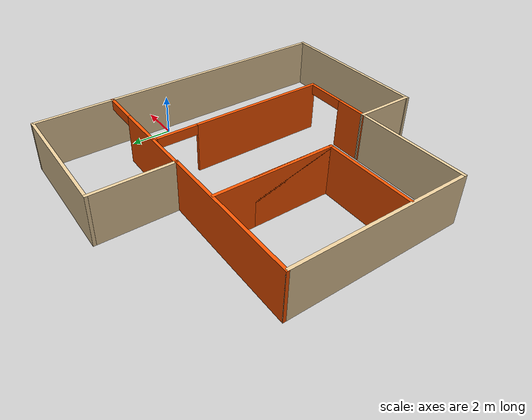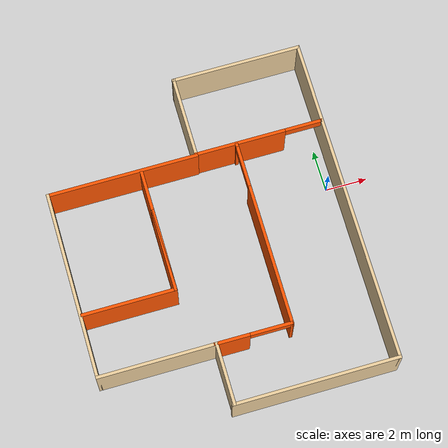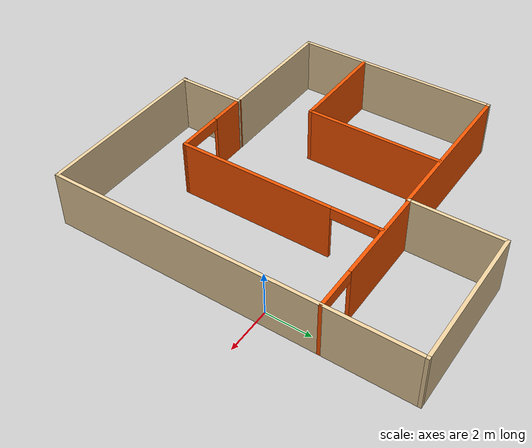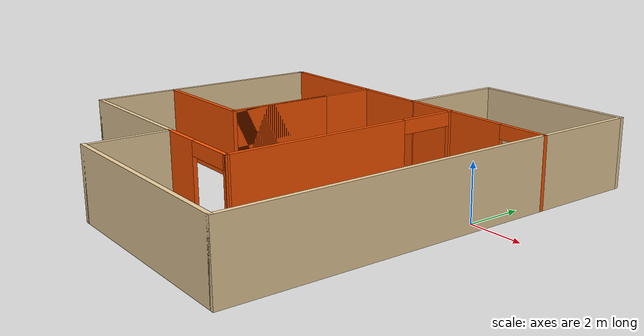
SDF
<?xml version='1.0'?>
<sdf version='1.6'>
  <model name='projectbuilding'>
    <pose frame=''>-6.133 -1.362 0 0 -0 0</pose>
    <link name='Wall_13'>
      <collision name='Wall_13_Collision'>
        <geometry>
          <box>
            <size>9 0.15 2.5</size>
          </box>
        </geometry>
        <pose frame=''>0 0 1.25 0 -0 0</pose>
      </collision>
      <visual name='Wall_13_Visual'>
        <pose frame=''>0 0 1.25 0 -0 0</pose>
        <geometry>
          <box>
            <size>9 0.15 2.5</size>
          </box>
        </geometry>
        <material>
          <script>
            <uri>file://media/materials/scripts/gazebo.material</uri>
            <name>Gazebo/Grey</name>
          </script>
          <ambient>0.921569 0.807843 0.615686 1</ambient>
        </material>
        <meta>
          <layer>0</layer>
        </meta>
      </visual>
      <pose frame=''>-6.6 -0.525 0 0 0 -1.5708</pose>
    </link>
    <link name='Wall_15'>
      <collision name='Wall_15_Collision'>
        <geometry>
          <box>
            <size>5.62 0.15 2.5</size>
          </box>
        </geometry>
        <pose frame=''>0 0 1.25 0 -0 0</pose>
      </collision>
      <visual name='Wall_15_Visual'>
        <pose frame=''>0 0 1.25 0 -0 0</pose>
        <geometry>
          <box>
            <size>5.62 0.15 2.5</size>
          </box>
        </geometry>
        <material>
          <script>
            <uri>file://media/materials/scripts/gazebo.material</uri>
            <name>Gazebo/Grey</name>
          </script>
          <ambient>0.921569 0.807843 0.615686 1</ambient>
        </material>
        <meta>
          <layer>0</layer>
        </meta>
      </visual>
      <pose frame=''>-3.865 -4.95 0 0 -0 0</pose>
    </link>
    <link name='Wall_17'>
      <collision name='Wall_17_Collision'>
        <geometry>
          <box>
            <size>3 0.15 2.5</size>
          </box>
        </geometry>
        <pose frame=''>0 0 1.25 0 -0 0</pose>
      </collision>
      <visual name='Wall_17_Visual'>
        <pose frame=''>0 0 1.25 0 -0 0</pose>
        <geometry>
          <box>
            <size>3 0.15 2.5</size>
          </box>
        </geometry>
        <material>
          <script>
            <uri>file://media/materials/scripts/gazebo.material</uri>
            <name>Gazebo/Grey</name>
          </script>
          <ambient>0.921569 0.807843 0.615686 1</ambient>
        </material>
        <meta>
          <layer>0</layer>
        </meta>
      </visual>
      <pose frame=''>-1.084 -6.375 0 0 0 -1.5708</pose>
    </link>
    <link name='Wall_19'>
      <collision name='Wall_19_Collision'>
        <geometry>
          <box>
            <size>7.88 0.15 2.5</size>
          </box>
        </geometry>
        <pose frame=''>0 0 1.25 0 -0 0</pose>
      </collision>
      <visual name='Wall_19_Visual'>
        <pose frame=''>0 0 1.25 0 -0 0</pose>
        <geometry>
          <box>
            <size>7.88 0.15 2.5</size>
          </box>
        </geometry>
        <material>
          <script>
            <uri>file://media/materials/scripts/gazebo.material</uri>
            <name>Gazebo/Grey</name>
          </script>
          <ambient>0.921569 0.807843 0.615686 1</ambient>
        </material>
        <meta>
          <layer>0</layer>
        </meta>
      </visual>
      <pose frame=''>2.735 -7.8 0 0 -0 0</pose>
    </link>
    <link name='Wall_2'>
      <collision name='Wall_2_Collision'>
        <geometry>
          <box>
            <size>7.25 0.15 2.5</size>
          </box>
        </geometry>
        <pose frame=''>0 0 1.25 0 -0 0</pose>
      </collision>
      <visual name='Wall_2_Visual'>
        <pose frame=''>0 0 1.25 0 -0 0</pose>
        <geometry>
          <box>
            <size>7.25 0.15 2.5</size>
          </box>
        </geometry>
        <material>
          <script>
            <uri>file://media/materials/scripts/gazebo.material</uri>
            <name>Gazebo/Grey</name>
          </script>
          <ambient>1 0.333333 0 1</ambient>
        </material>
        <meta>
          <layer>0</layer>
        </meta>
      </visual>
      <pose frame=''>-3.05 3.9 0 0 -0 0</pose>
    </link>
    <link name='Wall_21'>
      <collision name='Wall_21_Collision'>
        <geometry>
          <box>
            <size>15.75 0.15 2.5</size>
          </box>
        </geometry>
        <pose frame=''>0 0 1.25 0 -0 0</pose>
      </collision>
      <visual name='Wall_21_Visual'>
        <pose frame=''>0 0 1.25 0 -0 0</pose>
        <geometry>
          <box>
            <size>15.75 0.15 2.5</size>
          </box>
        </geometry>
        <material>
          <script>
            <uri>file://media/materials/scripts/gazebo.material</uri>
            <name>Gazebo/Grey</name>
          </script>
          <ambient>0.921569 0.807843 0.615686 1</ambient>
        </material>
        <meta>
          <layer>0</layer>
        </meta>
      </visual>
      <pose frame=''>6.6 0 0 0 -0 1.5708</pose>
    </link>
    <link name='Wall_22'>
      <collision name='Wall_22_Collision'>
        <geometry>
          <box>
            <size>6.25 0.15 2.5</size>
          </box>
        </geometry>
        <pose frame=''>0 0 1.25 0 -0 0</pose>
      </collision>
      <visual name='Wall_22_Visual'>
        <pose frame=''>0 0 1.25 0 -0 0</pose>
        <geometry>
          <box>
            <size>6.25 0.15 2.5</size>
          </box>
        </geometry>
        <material>
          <script>
            <uri>file://media/materials/scripts/gazebo.material</uri>
            <name>Gazebo/Grey</name>
          </script>
          <ambient>0.921569 0.807843 0.615686 1</ambient>
        </material>
        <meta>
          <layer>0</layer>
        </meta>
      </visual>
      <pose frame=''>3.55 7.8 0 0 -0 3.14159</pose>
    </link>
    <link name='Wall_23'>
      <collision name='Wall_23_Collision'>
        <geometry>
          <box>
            <size>4 0.15 2.5</size>
          </box>
        </geometry>
        <pose frame=''>0 0 1.25 0 -0 0</pose>
      </collision>
      <visual name='Wall_23_Visual'>
        <pose frame=''>0 0 1.25 0 -0 0</pose>
        <geometry>
          <box>
            <size>4 0.15 2.5</size>
          </box>
        </geometry>
        <material>
          <script>
            <uri>file://media/materials/scripts/gazebo.material</uri>
            <name>Gazebo/Grey</name>
          </script>
          <ambient>0.921569 0.807843 0.615686 1</ambient>
        </material>
        <meta>
          <layer>0</layer>
        </meta>
      </visual>
      <pose frame=''>0.5 5.875 0 0 0 -1.5708</pose>
    </link>
    <link name='Wall_25'>
      <pose frame=''>-2.16039 0.913927 0 0 0 -1.5708</pose>
      <visual name='Wall_25_Visual_0'>
        <pose frame=''>0 0 1.25 0 -0 0</pose>
        <geometry>
          <box>
            <size>6 0.15 2.5</size>
          </box>
        </geometry>
        <material>
          <script>
            <uri>file://media/materials/scripts/gazebo.material</uri>
            <name>Gazebo/Grey</name>
          </script>
          <ambient>1 0.333333 0 1</ambient>
        </material>
        <meta>
          <layer>0</layer>
        </meta>
      </visual>
      <collision name='Wall_25_Collision_0'>
        <geometry>
          <box>
            <size>6 0.15 2.5</size>
          </box>
        </geometry>
        <pose frame=''>0 0 1.25 0 -0 0</pose>
      </collision>
      <visual name='Wall_25_Visual_1'>
        <pose frame=''>0.9975 0 1.25 0 -0 0</pose>
        <geometry>
          <box>
            <size>4.005 0.15 2.5</size>
          </box>
        </geometry>
        <material>
          <script>
            <uri>file://media/materials/scripts/gazebo.material</uri>
            <name>Gazebo/Grey</name>
          </script>
          <ambient>1 0.333333 0 1</ambient>
        </material>
        <meta>
          <layer>0</layer>
        </meta>
      </visual>
      <collision name='Wall_25_Collision_1'>
        <geometry>
          <box>
            <size>4.005 0.15 2.5</size>
          </box>
        </geometry>
        <pose frame=''>0.9975 0 1.25 0 -0 0</pose>
      </collision>
    </link>
    <link name='Wall_26'>
      <collision name='Wall_26_Collision'>
        <geometry>
          <box>
            <size>4.5 0.15 2.5</size>
          </box>
        </geometry>
        <pose frame=''>0 0 1.25 0 -0 0</pose>
      </collision>
      <visual name='Wall_26_Visual'>
        <pose frame=''>0 0 1.25 0 -0 0</pose>
        <geometry>
          <box>
            <size>4.5 0.15 2.5</size>
          </box>
        </geometry>
        <material>
          <script>
            <uri>file://media/materials/scripts/gazebo.material</uri>
            <name>Gazebo/Grey</name>
          </script>
          <ambient>1 0.333333 0 1</ambient>
        </material>
        <meta>
          <layer>0</layer>
        </meta>
      </visual>
      <pose frame=''>-4.33539 -2.01107 0 0 -0 3.14159</pose>
    </link>
    <link name='Wall_28'>
      <pose frame=''>3.55 3.95 0 0 -0 0</pose>
      <visual name='Wall_28_Visual_0'>
        <pose frame=''>-0.934154 0 1.25 0 -0 0</pose>
        <geometry>
          <box>
            <size>4.38169 0.15 2.5</size>
          </box>
        </geometry>
        <material>
          <script>
            <uri>file://media/materials/scripts/gazebo.material</uri>
            <name>Gazebo/Grey</name>
          </script>
          <ambient>1 0.333333 0 1</ambient>
        </material>
        <meta>
          <layer>0</layer>
        </meta>
      </visual>
      <collision name='Wall_28_Collision_0'>
        <geometry>
          <box>
            <size>4.38169 0.15 2.5</size>
          </box>
        </geometry>
        <pose frame=''>-0.934154 0 1.25 0 -0 0</pose>
      </collision>
      <visual name='Wall_28_Visual_1'>
        <pose frame=''>3.09085 0 1.25 0 -0 0</pose>
        <geometry>
          <box>
            <size>0.068309 0.15 2.5</size>
          </box>
        </geometry>
        <material>
          <script>
            <uri>file://media/materials/scripts/gazebo.material</uri>
            <name>Gazebo/Grey</name>
          </script>
          <ambient>1 0.333333 0 1</ambient>
        </material>
        <meta>
          <layer>0</layer>
        </meta>
      </visual>
      <collision name='Wall_28_Collision_1'>
        <geometry>
          <box>
            <size>0.068309 0.15 2.5</size>
          </box>
        </geometry>
        <pose frame=''>3.09085 0 1.25 0 -0 0</pose>
      </collision>
      <visual name='Wall_28_Visual_2'>
        <pose frame=''>2.15669 0 2.25 0 -0 0</pose>
        <geometry>
          <box>
            <size>1.8 0.15 0.5</size>
          </box>
        </geometry>
        <material>
          <script>
            <uri>file://media/materials/scripts/gazebo.material</uri>
            <name>Gazebo/Grey</name>
          </script>
          <ambient>1 0.333333 0 1</ambient>
        </material>
        <meta>
          <layer>0</layer>
        </meta>
      </visual>
      <collision name='Wall_28_Collision_2'>
        <geometry>
          <box>
            <size>1.8 0.15 0.5</size>
          </box>
        </geometry>
        <pose frame=''>2.15669 0 2.25 0 -0 0</pose>
      </collision>
    </link>
    <link name='Wall_30'>
      <pose frame=''>2.43961 -0.540073 0 0 0 -1.5708</pose>
      <visual name='Wall_30_Visual_0'>
        <pose frame=''>-4.41021 0 1.25 0 -0 0</pose>
        <geometry>
          <box>
            <size>0.179569 0.15 2.5</size>
          </box>
        </geometry>
        <material>
          <script>
            <uri>file://media/materials/scripts/gazebo.material</uri>
            <name>Gazebo/Grey</name>
          </script>
          <ambient>1 0.333333 0 1</ambient>
        </material>
        <meta>
          <layer>0</layer>
        </meta>
      </visual>
      <collision name='Wall_30_Collision_0'>
        <geometry>
          <box>
            <size>0.179569 0.15 2.5</size>
          </box>
        </geometry>
        <pose frame=''>-4.41021 0 1.25 0 -0 0</pose>
      </collision>
      <visual name='Wall_30_Visual_1'>
        <pose frame=''>1.08979 0 1.25 0 -0 0</pose>
        <geometry>
          <box>
            <size>6.82043 0.15 2.5</size>
          </box>
        </geometry>
        <material>
          <script>
            <uri>file://media/materials/scripts/gazebo.material</uri>
            <name>Gazebo/Grey</name>
          </script>
          <ambient>1 0.333333 0 1</ambient>
        </material>
        <meta>
          <layer>0</layer>
        </meta>
      </visual>
      <collision name='Wall_30_Collision_1'>
        <geometry>
          <box>
            <size>6.82043 0.15 2.5</size>
          </box>
        </geometry>
        <pose frame=''>1.08979 0 1.25 0 -0 0</pose>
      </collision>
      <visual name='Wall_30_Visual_2'>
        <pose frame=''>-3.32043 0 2.25 0 -0 0</pose>
        <geometry>
          <box>
            <size>2 0.15 0.5</size>
          </box>
        </geometry>
        <material>
          <script>
            <uri>file://media/materials/scripts/gazebo.material</uri>
            <name>Gazebo/Grey</name>
          </script>
          <ambient>1 0.333333 0 1</ambient>
        </material>
        <meta>
          <layer>0</layer>
        </meta>
      </visual>
      <collision name='Wall_30_Collision_2'>
        <geometry>
          <box>
            <size>2 0.15 0.5</size>
          </box>
        </geometry>
        <pose frame=''>-3.32043 0 2.25 0 -0 0</pose>
      </collision>
    </link>
    <link name='Wall_31'>
      <pose frame=''>0.654806 -4.95754 0 0 -0 3.13737</pose>
      <visual name='Wall_31_Visual_0'>
        <pose frame=''>-1.83934 0 1.25 0 -0 0</pose>
        <geometry>
          <box>
            <size>0.040957 0.15 2.5</size>
          </box>
        </geometry>
        <material>
          <script>
            <uri>file://media/materials/scripts/gazebo.material</uri>
            <name>Gazebo/Grey</name>
          </script>
          <ambient>1 0.333333 0 1</ambient>
        </material>
        <meta>
          <layer>0</layer>
        </meta>
      </visual>
      <collision name='Wall_31_Collision_0'>
        <geometry>
          <box>
            <size>0.040957 0.15 2.5</size>
          </box>
        </geometry>
        <pose frame=''>-1.83934 0 1.25 0 -0 0</pose>
      </collision>
      <visual name='Wall_31_Visual_1'>
        <pose frame=''>1.02048 0 1.25 0 -0 0</pose>
        <geometry>
          <box>
            <size>1.67869 0.15 2.5</size>
          </box>
        </geometry>
        <material>
          <script>
            <uri>file://media/materials/scripts/gazebo.material</uri>
            <name>Gazebo/Grey</name>
          </script>
          <ambient>1 0.333333 0 1</ambient>
        </material>
        <meta>
          <layer>0</layer>
        </meta>
      </visual>
      <collision name='Wall_31_Collision_1'>
        <geometry>
          <box>
            <size>1.67869 0.15 2.5</size>
          </box>
        </geometry>
        <pose frame=''>1.02048 0 1.25 0 -0 0</pose>
      </collision>
      <visual name='Wall_31_Visual_2'>
        <pose frame=''>-0.818865 0 2.25 0 -0 0</pose>
        <geometry>
          <box>
            <size>2 0.15 0.5</size>
          </box>
        </geometry>
        <material>
          <script>
            <uri>file://media/materials/scripts/gazebo.material</uri>
            <name>Gazebo/Grey</name>
          </script>
          <ambient>1 0.333333 0 1</ambient>
        </material>
        <meta>
          <layer>0</layer>
        </meta>
      </visual>
      <collision name='Wall_31_Collision_2'>
        <geometry>
          <box>
            <size>2 0.15 0.5</size>
          </box>
        </geometry>
        <pose frame=''>-0.818865 0 2.25 0 -0 0</pose>
      </collision>
    </link>
    <static>1</static>
  </model>
</sdf>
